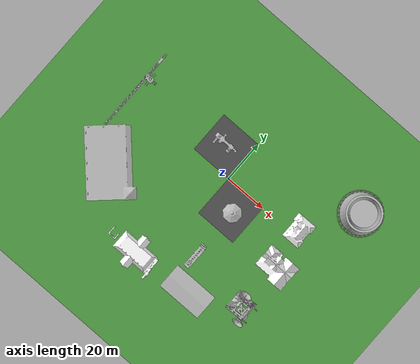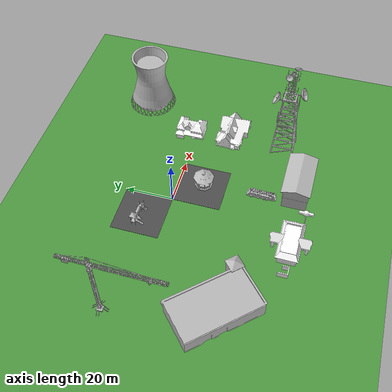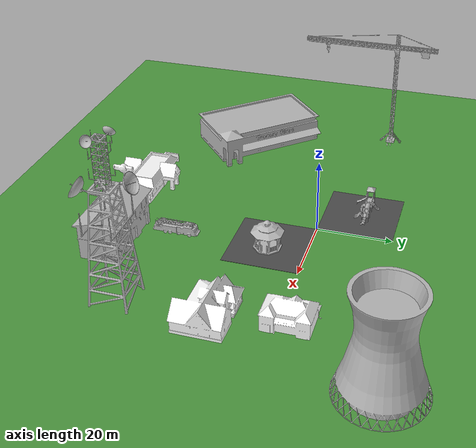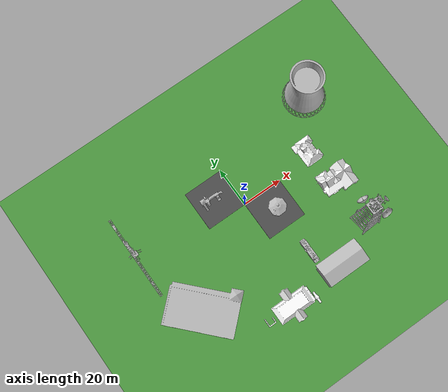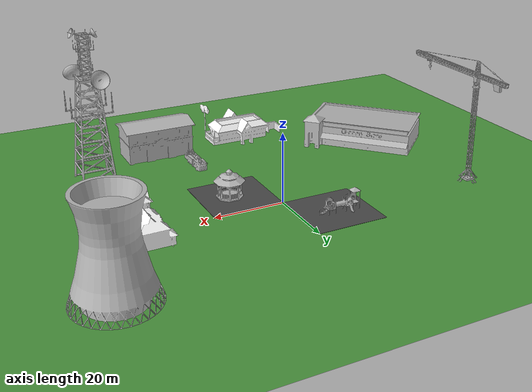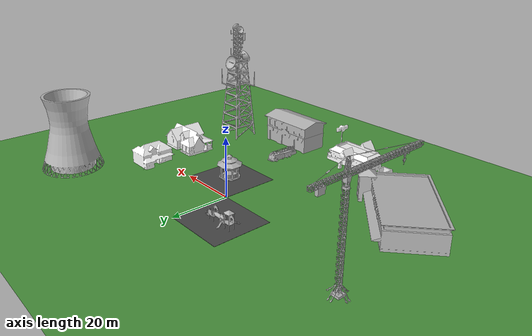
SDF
<sdf version="1.7">
 <world name="default">
  <plugin name="mrs_gazebo_static_transform_republisher_plugin" filename="libMrsGazeboCommonResources_StaticTransformRepublisher.so"/>
  <spherical_coordinates>
   <surface_model>EARTH_WGS84</surface_model>
   <latitude_deg>47.3977</latitude_deg>
   <longitude_deg>8.54559</longitude_deg>
   <elevation>0</elevation>
   <heading_deg>0</heading_deg>
  </spherical_coordinates>
  <physics name="default_physics" default="0" type="ode">
   <ode>
    <solver>
     <type>quick</type>
     <iters>50</iters>
     <sor>1</sor>
     <use_dynamic_moi_rescaling>0</use_dynamic_moi_rescaling>
    </solver>
    <constraints>
     <cfm>0</cfm>
     <erp>0.2</erp>
     <contact_max_correcting_vel>1000</contact_max_correcting_vel>
     <contact_surface_layer>0.001</contact_surface_layer>
    </constraints>
   </ode>
   <max_step_size>0.004</max_step_size>
   <real_time_factor>1</real_time_factor>
   <real_time_update_rate>250</real_time_update_rate>
  </physics>
  <scene><shadows>0</shadows><ambient>0.4 0.4 0.4 1</ambient><background>0.7 0.7 0.7 1</background></scene>
  <light name="sun" type="directional">
   <pose>250 250 600 0 -0 0</pose>
   <diffuse>0.8 0.8 0.8 1</diffuse>
   <specular>0.2 0.2 0.2 1</specular>
   <attenuation>
    <range>1000</range>
    <constant>0.9</constant>
    <linear>0.01</linear>
    <quadratic>0.001</quadratic>
   </attenuation>
   <direction>0 0 -1</direction>
   <spot><inner_angle>0</inner_angle><outer_angle>0</outer_angle><falloff>0</falloff></spot>
  </light>
  <model name="ground_plane">
   <static>1</static>
   <link name="link">
    <collision name="collision">
     <geometry><plane><normal>0 0 1</normal><size>250 250</size></plane></geometry>
     <surface><friction><ode><mu>1</mu><mu2>1</mu2></ode></friction></surface>
    </collision>
    <visual name="grass">
     <cast_shadows>0</cast_shadows>
     <geometry><plane><normal>0 0 1</normal><size>150 250</size></plane></geometry>
     <material>
      <script><uri>file://media/materials/scripts/Gazebo.material</uri><name>Gazebo/Grass</name></script>
     </material>
    </visual>
   </link>
  </model>
  <plugin name="mrs_gazebo_rviz_cam_synchronizer" filename="libMrsGazeboCommonResources_RvizCameraSynchronizer.so">
   <target_frame_id>gazebo_user_camera</target_frame_id>
   <world_origin_frame_id>uav1/gps_origin</world_origin_frame_id>
   <frame_to_follow>uav1::base_link</frame_to_follow>
  </plugin>
  <gravity>0 0 -9.8066</gravity>
  <magnetic_field>6e-06 2.3e-05 -4.2e-05</magnetic_field>
  <atmosphere type="adiabatic"/>
  <model name="asphalt_plane">
   <static>1</static>
   <link name="link">
    <collision name="collision"><geometry><box><size>20 20 0.1</size></box></geometry></collision>
    <visual name="visual">
     <cast_shadows>0</cast_shadows>
     <geometry><box><size>20 20 0.1</size></box></geometry>
     <material>
      <script>
       <uri>model://asphalt_plane/materials/scripts</uri>
       <uri>model://asphalt_plane/materials/textures</uri>
       <name>vrc/asphalt</name>
      </script>
     </material>
    </visual>
   </link>
   <pose>9.92395 -9.92223 0 0 -0 0</pose>
  </model>
  <model name="asphalt_plane_0">
   <static>1</static>
   <link name="link">
    <collision name="collision"><geometry><box><size>20 20 0.1</size></box></geometry></collision>
    <visual name="visual">
     <cast_shadows>0</cast_shadows>
     <geometry><box><size>20 20 0.1</size></box></geometry>
     <material>
      <script>
       <uri>model://asphalt_plane/materials/scripts</uri>
       <uri>model://asphalt_plane/materials/textures</uri>
       <name>vrc/asphalt</name>
      </script>
     </material>
    </visual>
   </link>
   <pose>-10.0474 9.94042 0 0 -0 0</pose>
  </model>
  <model name="Fast Food">
   <static>1</static>
   <link name="link">
    <pose>0 0 3.15931 0 -0 0</pose>
    <collision name="collision">
     <geometry><mesh><scale>3 3 2</scale><uri>model://fast_food/meshes/fast_food.dae</uri></mesh></geometry>
    </collision>
    <visual name="visual">
     <geometry><mesh><scale>3 3 2</scale><uri>model://fast_food/meshes/fast_food.dae</uri></mesh></geometry>
     <material>
      <script>
       <uri>model://fast_food/materials/scripts</uri>
       <uri>model://fast_food/materials/textures</uri>
       <name>FastFood/Diffuse</name>
      </script>
      <shader type="normal_map_tangent_space"><normal_map>FastFood_Normal.png</normal_map></shader>
     </material>
    </visual>
   </link>
   <pose>-9.70494 -50.8755 0 0 -0 0</pose>
  </model>
  <model name="fire_station">
   <static>1</static>
   <link name="link">
    <collision name="main">
     <pose>0 -0.135 5 0 -0 0</pose>
     <geometry><box><size>19.98 9.68 10</size></box></geometry>
    </collision>
    <collision name="front_top">
     <pose>0 4.957 7 0 -0 0</pose>
     <geometry><box><size>20 0.515 6</size></box></geometry>
    </collision>
    <collision name="column_0">
     <pose>9.333 4.957 2 0 -0 0</pose>
     <geometry><box><size>1.315 0.515 4</size></box></geometry>
    </collision>
    <collision name="column_1">
     <pose>3.33 4.957 2 0 -0 0</pose>
     <geometry><box><size>2.63 0.515 4</size></box></geometry>
    </collision>
    <collision name="column_2">
     <pose>-3.33 4.957 2 0 -0 0</pose>
     <geometry><box><size>2.63 0.515 4</size></box></geometry>
    </collision>
    <collision name="column_3">
     <pose>-9.333 4.957 2 0 -0 0</pose>
     <geometry><box><size>1.315 0.515 4</size></box></geometry>
    </collision>
    <collision name="roof_back">
     <pose>0 -2.742 10.467 0.25 -0 0</pose>
     <geometry><box><size>21.47 6.12 0.28</size></box></geometry>
    </collision>
    <collision name="roof_front">
     <pose>0 3.12 10.467 -0.25 0 0</pose>
     <geometry><box><size>21.47 6.12 0.28</size></box></geometry>
    </collision>
    <collision name="roof_base">
     <pose>0 0.188 9.705 0 -0 0</pose>
     <geometry><box><size>21.47 11.86 0.28</size></box></geometry>
    </collision>
    <collision name="roof_filling_0">
     <pose>0 0.188 9.985 0 -0 0</pose>
     <geometry><box><size>21.47 9.53 0.28</size></box></geometry>
    </collision>
    <collision name="roof_filling_1">
     <pose>0 0.188 10.14 0 -0 0</pose>
     <geometry><box><size>21.47 8.41 0.28</size></box></geometry>
    </collision>
    <collision name="roof_filling_2">
     <pose>0 0.188 10.42 0 -0 0</pose>
     <geometry><box><size>21.47 6.25 0.28</size></box></geometry>
    </collision>
    <collision name="roof_filling_3">
     <pose>0 0.188 10.7 0 -0 0</pose>
     <geometry><box><size>21.47 4.05 0.28</size></box></geometry>
    </collision>
    <collision name="roof_filling_4">
     <pose>0 0.188 10.98 0 -0 0</pose>
     <geometry><box><size>21.47 1.83 0.28</size></box></geometry>
    </collision>
    <visual name="visual">
     <geometry><mesh><uri>model://fire_station/meshes/fire_station.dae</uri></mesh></geometry>
    </visual>
   </link>
   <pose>18.8977 -48.9001 0 0 -0 0</pose>
  </model>
  <model name="fire_truck">
   <static>1</static>
   <link name="link">
    <collision name="collision">
     <geometry>
      <mesh><scale>0.1 0.1 0.1</scale><uri>model://fire_truck/meshes/fire_truck.obj</uri></mesh>
     </geometry>
    </collision>
    <visual name="visual">
     <geometry>
      <mesh><scale>0.1 0.1 0.1</scale><uri>model://fire_truck/meshes/fire_truck.obj</uri></mesh>
     </geometry>
    </visual>
   </link>
   <pose>11.3508 -34.7513 0 0 -0 0</pose>
  </model>
  <model name="House 1">
   <static>1</static>
   <link name="link">
    <collision name="collision">
     <geometry><mesh><uri>model://house_1/meshes/house_1.dae</uri><scale>1.5 1.5 1.5</scale></mesh></geometry>
    </collision>
    <visual name="visual">
     <geometry><mesh><uri>model://house_1/meshes/house_1.dae</uri><scale>1.5 1.5 1.5</scale></mesh></geometry>
     <material>
      <script>
       <uri>model://house_1/materials/scripts</uri>
       <uri>model://house_1/materials/textures</uri>
       <name>House_1/Diffuse</name>
      </script>
      <shader type="normal_map_tangent_space"><normal_map>House_1_Normal.png</normal_map></shader>
     </material>
    </visual>
   </link>
   <pose>41.538 -15.158 0 0 -0 0</pose>
  </model>
  <model name="House 2">
   <static>1</static>
   <link name="link">
    <collision name="collision">
     <geometry><mesh><uri>model://house_2/meshes/house_2.dae</uri><scale>1.5 1.5 1.5</scale></mesh></geometry>
    </collision>
    <visual name="visual">
     <geometry><mesh><uri>model://house_2/meshes/house_2.dae</uri><scale>1.5 1.5 1.5</scale></mesh></geometry>
     <material>
      <script>
       <uri>model://house_2/materials/scripts</uri>
       <uri>model://house_2/materials/textures</uri>
       <uri>model://house_1/materials/textures</uri>
       <name>House_2/Diffuse</name>
      </script>
      <shader type="normal_map_tangent_space">
       <normal_map>model://house_1/materials/textures/House_1_Normal.png</normal_map>
      </shader>
     </material>
    </visual>
   </link>
   <pose>38.8029 2.0518 0 0 -0 1.58146</pose>
  </model>
  <model name="grocery_store">
   <static>1</static>
   <link name="link">
    <collision name="collision">
     <pose>0 0 4.04605 0 -0 0</pose>
     <geometry><box><size>32.1985 17.5425 8.09209</size></box></geometry>
    </collision>
    <visual name="visual">
     <pose>0 -1.96155 0 0 -0 0</pose>
     <geometry><mesh><uri>model://grocery_store/meshes/grocery_store.dae</uri></mesh></geometry>
    </visual>
   </link>
   <pose>-44.7833 -29.8667 0 0 0 -0.819471</pose>
  </model>
  <model name="playground">
   <static>1</static>
   <link name="link">
    <collision name="collision">
     <geometry><mesh><uri>model://playground/meshes/playground.dae</uri></mesh></geometry>
    </collision>
    <visual name="visual">
     <geometry><mesh><uri>model://playground/meshes/playground.dae</uri></mesh></geometry>
    </visual>
   </link>
   <pose>-10.9744 10.7941 0 0 -0 0</pose>
  </model>
  <model name="tower_crane">
   <static>1</static>
   <link name="link">
    <collision name="collision">
     <geometry><mesh><uri>model://tower_crane/meshes/tower_crane.dae</uri></mesh></geometry>
    </collision>
    <visual name="visual">
     <geometry><mesh><uri>model://tower_crane/meshes/tower_crane.dae</uri></mesh></geometry>
    </visual>
   </link>
   <pose>-54.45 10.2051 0 0 -0 0</pose>
  </model>
  <model name="radio_tower">
   <static>1</static>
   <link name="link">
    <collision name="collision">
     <geometry><mesh><uri>model://radio_tower/meshes/radio_tower.dae</uri></mesh></geometry>
    </collision>
    <visual name="visual">
     <geometry><mesh><uri>model://radio_tower/meshes/radio_tower.dae</uri></mesh></geometry>
    </visual>
   </link>
   <pose>40.7748 -38.3287 0 0 -0 0</pose>
  </model>
  <model name="gazebo">
   <static>1</static>
   <link name="link">
    <collision name="collision">
     <geometry><mesh><scale>3 3 2.5</scale><uri>model://gazebo/meshes/gazebo.dae</uri></mesh></geometry>
    </collision>
    <visual name="visual">
     <geometry><mesh><scale>3 3 2.5</scale><uri>model://gazebo/meshes/gazebo.dae</uri></mesh></geometry>
    </visual>
   </link>
   <pose>11.1512 -10.2652 0 0 -0 0</pose>
  </model>
  <model name="reactor">
   <static>1</static>
   <link name="link">
    <collision name="collision">
     <geometry><mesh><uri>model://reactor/meshes/reactor.dae</uri></mesh></geometry>
    </collision>
    <visual name="visual"><geometry><mesh><uri>model://reactor/meshes/reactor.dae</uri></mesh></geometry></visual>
   </link>
   <pose>53.6283 26.6013 0 0 -0 0</pose>
  </model>
 </world>
</sdf>
